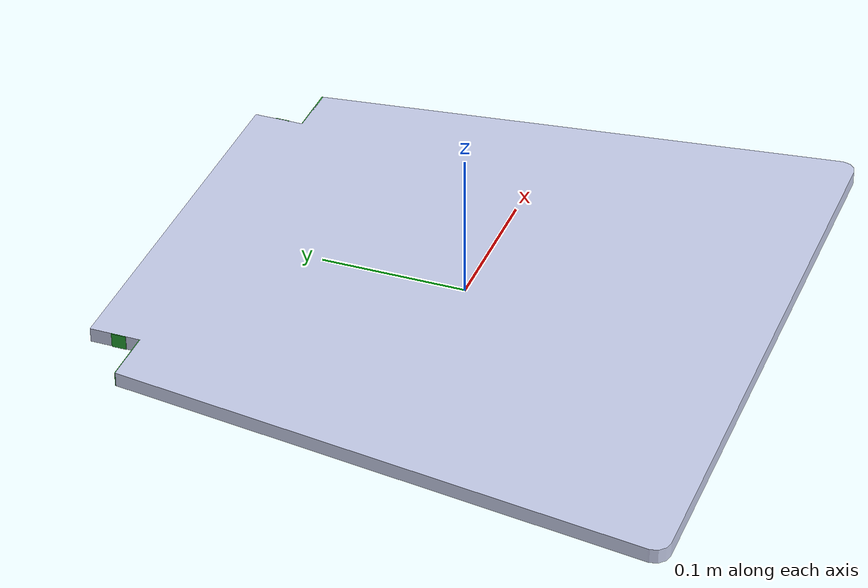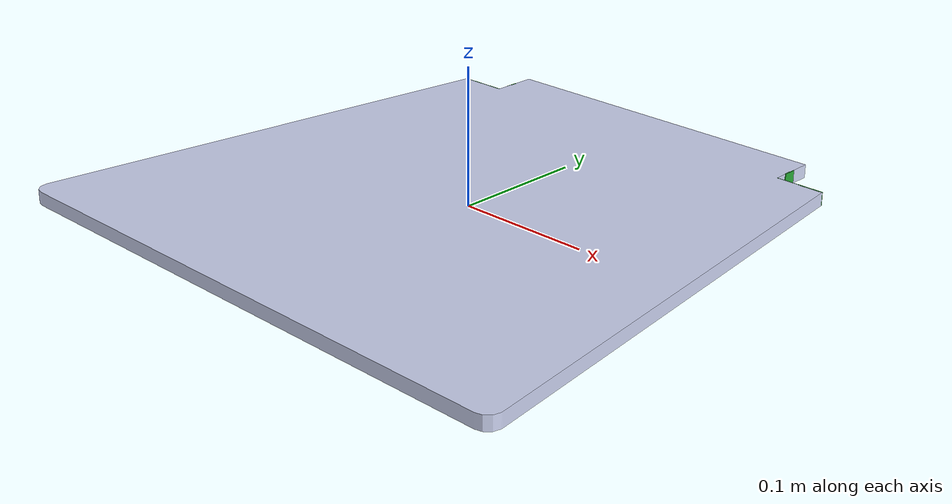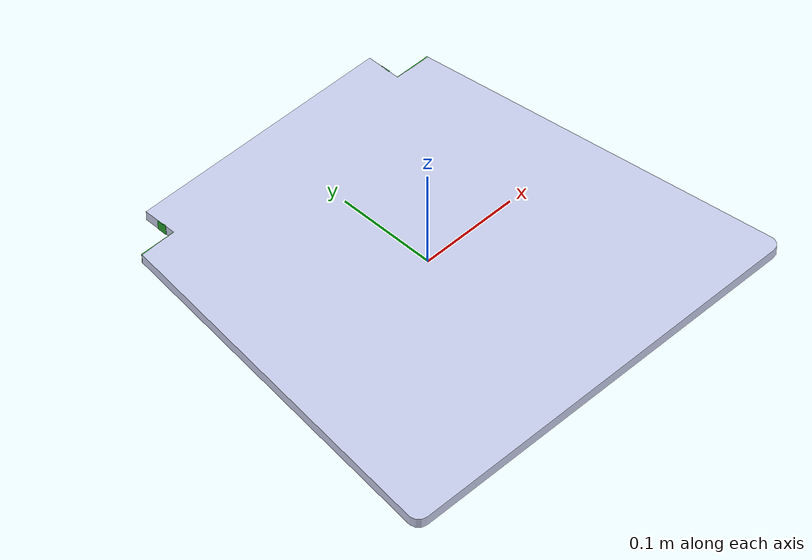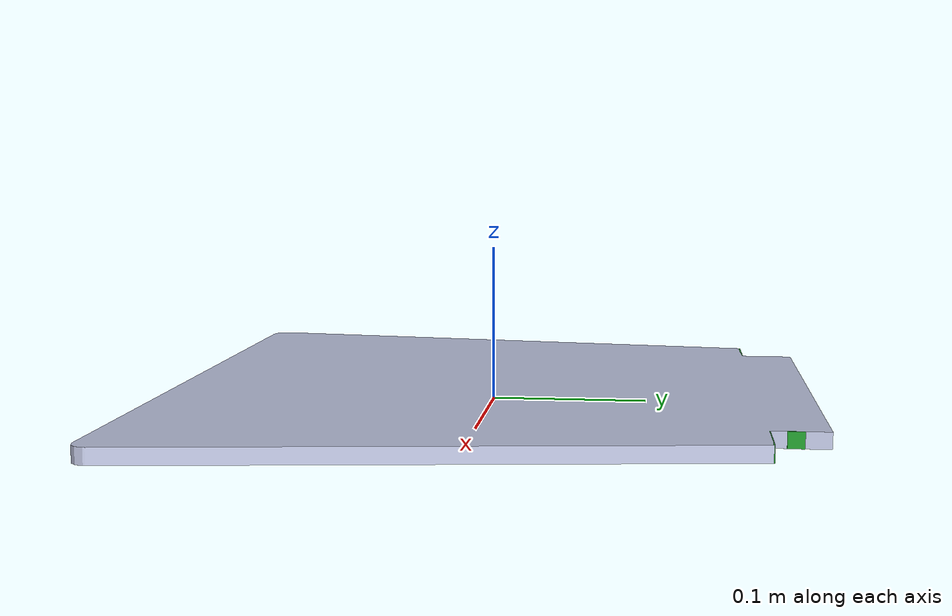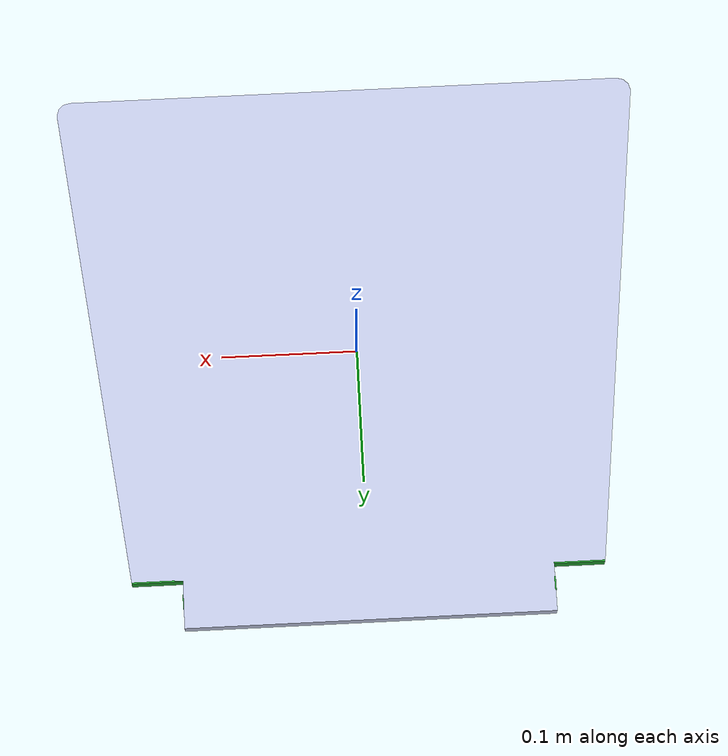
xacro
<?xml version="1.0"?>
<robot name="part1" xmlns:xacro="http://www.ros.org/wiki/xacro">
	<xacro:include filename="$(find object_description)/chair_urdf/chair_part1.SLDPRT.urdf"/>
	<xacro:include filename="$(find object_description)/chair_xacro_re/for_assemble_macro.xacro"/>

	<xacro:property name="x_offset" value="0.0"/>
	<xacro:property name="y_offset" value="0.0"/>
	<xacro:property name="z_offset" value="0.0"/>
	<xacro:property name="id_space" value="chair1"/>

	<xacro:surface_definition link_name="part1 surface part5-1 1"
							  box_x="0.01" box_y="0.01" box_z="0.001"
							  x="${-0.1525 + 0.037/2 + x_offset}" y="${0.17 + 0.015 + y_offset}" z="${0.005 + z_offset}"
							  rx="0" ry="${-pi/2}" rz="0"
							  parent="chair part1.SLDPRT"/>

	<xacro:surface_definition link_name="part1 surface part5-2 2"
							  box_x="0.1" box_y="0.1" box_z="0.001"
							  x="${0 + x_offset}" y="${0 + y_offset}" z="${0 + z_offset}"
							  rx="0" ry="${pi}" rz="0"
							  parent="chair part1.SLDPRT"/>

	<xacro:surface_definition link_name="part1 surface part5-3 3"
							  box_x="0.037" box_y="0.01" box_z="0.001"
							  x="${-0.1525 + x_offset}" y="${0.17 + y_offset}" z="${0.005 + z_offset}"
							  rx="${-pi/2}" ry="0" rz="0"
							  parent="chair part1.SLDPRT"/>

	<xacro:surface_definition link_name="part1 surface part6-1 4"
							  box_x="0.01" box_y="0.01" box_z="0.001"
							  x="${0.1525 - 0.037/2 + x_offset}" y="${0.17 + 0.015 + y_offset}" z="${0.005 + z_offset}"
							  rx="0" ry="${pi/2}" rz="0"
							  parent="chair part1.SLDPRT"/>

	<xacro:surface_definition link_name="part1 surface part6-2 5"
							  box_x="0.1" box_y="0.1" box_z="0.001"
							  x="${0 + x_offset}" y="${0 + y_offset}" z="${0 + z_offset}"
							  rx="0" ry="${pi}" rz="0"
							  parent="chair part1.SLDPRT"/>

	<xacro:surface_definition link_name="part1 surface part6-3 6"
							  box_x="0.037" box_y="0.01" box_z="0.001"
							  x="${0.1525 + x_offset}" y="${0.17 + y_offset}" z="${0.005 + z_offset}"
							  rx="${-pi/2}" ry="0" rz="0"
							  parent="chair part1.SLDPRT"/>

</robot>

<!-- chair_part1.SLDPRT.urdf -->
<robot
  name="chair part1.SLDPRT">
  <link
    name="chair part1.SLDPRT">
    <inertial>
      <origin
        xyz="-3.8106E-18 -0.012314 0.005"
        rpy="-1.5707963267949 0 0" />
      <mass
        value="1.556" />
      <inertia
        ixx="0.021045"
        ixy="6.94829999999999E-20"
        ixz="1.2906E-18"
        iyy="0.040395"
        iyz="-1.33939704754963E-18"
        izz="0.019376" />
    </inertial>
    <visual>
      <origin
        xyz="0 0 0"
        rpy="0 0 0" />
      <geometry>
        <mesh
          filename="package://object_description/chair_meshes/chair part1.SLDPRT.STL" />
      </geometry>
      <material
        name="">
        <color
          rgba="0.79216 0.81961 0.93333 1" />
      </material>
    </visual>
    <collision>
      <origin
        xyz="0 0 0"
        rpy="0 0 0" />
      <geometry>
        <mesh
          filename="package://object_description/chair_meshes/chair part1.SLDPRT.STL" />
      </geometry>
      <surface>
      <contact>
          <ode>
            <kp>1.0E+15</kp>
            <kd>1.0E+13</kd>
          </ode>
        </contact>
      </surface>
    </collision>
  </link>
  <gazebo reference="chair part1.SLDPRT">
    <material>Gazebo/White</material>
    <kp>100000.0</kp>
    <kd>1.0</kd>
    <mu1>100000</mu1>
    <mu2>100000</mu2>
    <maxVel>0</maxVel>
    <minDepth>0.00</minDepth>
  </gazebo>
</robot>

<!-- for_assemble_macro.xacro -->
<robot xmlns:xacro="http://wiki.ros.org/xacro">

	<xacro:macro name="hole_definition" params="link_name
												length radius
												x y z rx ry rz
												parent">
		<link name="${link_name}">
			<visual>
				<origin xyz="0 0 0" rpy="0 0 0"/>
				<geometry>
					<cylinder length="${length}" radius="${radius}"/>
				</geometry>
			</visual>
		</link>

		<joint name="${link_name} joint" type="fixed">
			<origin xyz="${x} ${y} ${z}" rpy="${rx} ${ry} ${rz}"/>
			<parent link="${parent}"/>
			<child link="${link_name}"/>
		</joint>

		<gazebo reference="${link_name}">
			<material>Gazebo/BlueTransparent</material>
		</gazebo>
	</xacro:macro>

	<xacro:macro name="shaft_definition" params="link_name
												length radius
												x y z rx ry rz
												parent">
		<link name="${link_name}">
			<visual>
				<origin xyz="0 0 0" rpy="0 0 0"/>
				<geometry>
					<cylinder length="${length}" radius="${radius}"/>
				</geometry>
			</visual>
		</link>

		<joint name="${link_name} joint" type="fixed">
			<origin xyz="${x} ${y} ${z}" rpy="${rx} ${ry} ${rz}"/>
			<parent link="${parent}"/>
			<child link="${link_name}"/>
		</joint>

		<gazebo reference="${link_name}">
			<material>Gazebo/RedTransparent</material>
		</gazebo>
	</xacro:macro>

	<xacro:macro name="surface_definition" params="link_name
												   box_x box_y box_z
												   x y z rx ry rz
												   parent">
		<link name="${link_name}">
			<visual>
				<origin xyz="0 0 0" rpy="0 0 0"/>
				<geometry>
					<box size="${box_x} ${box_y} ${box_z}"/>
				</geometry>
			</visual>
		</link>

		<joint name="${link_name} joint" type="fixed">
			<origin xyz="${x} ${y} ${z}" rpy="${rx} ${ry} ${rz}"/>
			<parent link="${parent}"/>
			<child link="${link_name}"/>
		</joint>

		<gazebo reference="${link_name}">
			<material>Gazebo/GreenTransparent</material>
		</gazebo>
	</xacro:macro>

</robot>
